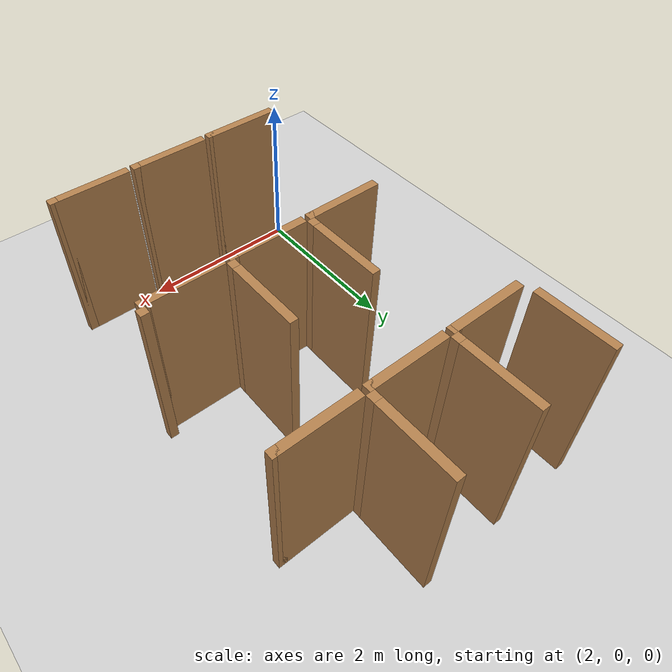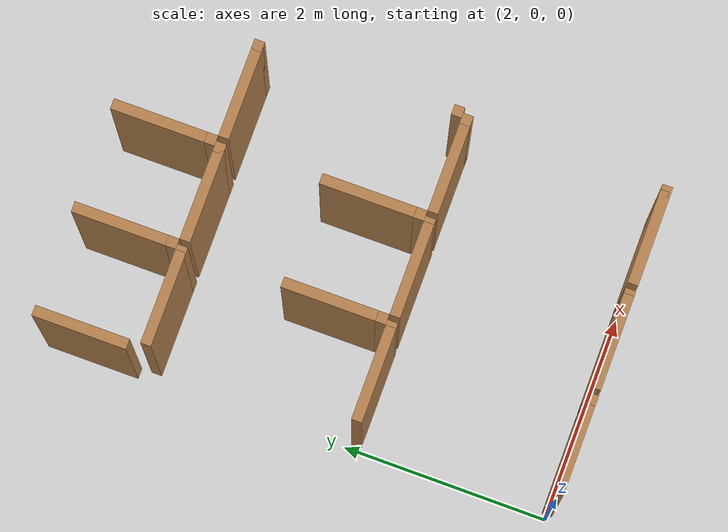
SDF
<sdf version="1.6">
 <world name="default">
  <include><uri>model://sun</uri></include>
  <model name="ground_plane">
   <static>true</static>
   <link name="link">
    <collision name="collision"><geometry><plane><size>12.0 12.0</size></plane></geometry></collision>
    <visual name="visual">
     <cast_shadows>false</cast_shadows>
     <geometry><plane><size>12.0 12.0</size></plane></geometry>
     <material>
      <script><uri>file://media/materials/scripts/gazebo.material</uri><name>Gazebo/Grey</name></script>
     </material>
    </visual>
   </link>
   <pose>6.0 6.0 0 0 0 0</pose>
  </model>
  <model name="vwall_2_3">
   <pose>3.0 2.5 1.0 0 0 0</pose>
   <link name="link">
    <collision name="collision"><geometry><box><size>0.1 0.9 2</size></box></geometry></collision>
    <visual name="visual">
     <geometry><box><size>0.1 0.9 2</size></box></geometry>
     <material>
      <script><uri>file://media/materials/scripts/gazebo.material</uri><name>Gazebo/Wood</name></script>
     </material>
    </visual>
   </link>
  </model>
  <model name="joint_3.0_-2.0">
   <pose>3.0 2.0 1.0 0 0 0</pose>
   <link name="link">
    <collision name="collision"><geometry><box><size>0.1 0.1 2</size></box></geometry></collision>
    <visual name="visual">
     <geometry><box><size>0.1 0.1 2</size></box></geometry>
     <material>
      <script><uri>file://media/materials/scripts/gazebo.material</uri><name>Gazebo/Wood</name></script>
     </material>
    </visual>
   </link>
  </model>
  <model name="vwall_2_4">
   <pose>4.0 2.5 1.0 0 0 0</pose>
   <link name="link">
    <collision name="collision"><geometry><box><size>0.1 0.9 2</size></box></geometry></collision>
    <visual name="visual">
     <geometry><box><size>0.1 0.9 2</size></box></geometry>
     <material>
      <script><uri>file://media/materials/scripts/gazebo.material</uri><name>Gazebo/Wood</name></script>
     </material>
    </visual>
   </link>
  </model>
  <model name="joint_4.0_-2.0">
   <pose>4.0 2.0 1.0 0 0 0</pose>
   <link name="link">
    <collision name="collision"><geometry><box><size>0.1 0.1 2</size></box></geometry></collision>
    <visual name="visual">
     <geometry><box><size>0.1 0.1 2</size></box></geometry>
     <material>
      <script><uri>file://media/materials/scripts/gazebo.material</uri><name>Gazebo/Wood</name></script>
     </material>
    </visual>
   </link>
  </model>
  <model name="joint_5.0_-2.0">
   <pose>5.0 2.0 1.0 0 0 0</pose>
   <link name="link">
    <collision name="collision"><geometry><box><size>0.1 0.1 2</size></box></geometry></collision>
    <visual name="visual">
     <geometry><box><size>0.1 0.1 2</size></box></geometry>
     <material>
      <script><uri>file://media/materials/scripts/gazebo.material</uri><name>Gazebo/Wood</name></script>
     </material>
    </visual>
   </link>
  </model>
  <model name="vwall_4_2">
   <pose>2.0 4.5 1.0 0 0 0</pose>
   <link name="link">
    <collision name="collision"><geometry><box><size>0.1 0.9 2</size></box></geometry></collision>
    <visual name="visual">
     <geometry><box><size>0.1 0.9 2</size></box></geometry>
     <material>
      <script><uri>file://media/materials/scripts/gazebo.material</uri><name>Gazebo/Wood</name></script>
     </material>
    </visual>
   </link>
  </model>
  <model name="vwall_4_3">
   <pose>3.0 4.5 1.0 0 0 0</pose>
   <link name="link">
    <collision name="collision"><geometry><box><size>0.1 0.9 2</size></box></geometry></collision>
    <visual name="visual">
     <geometry><box><size>0.1 0.9 2</size></box></geometry>
     <material>
      <script><uri>file://media/materials/scripts/gazebo.material</uri><name>Gazebo/Wood</name></script>
     </material>
    </visual>
   </link>
  </model>
  <model name="joint_3.0_-4.0">
   <pose>3.0 4.0 1.0 0 0 0</pose>
   <link name="link">
    <collision name="collision"><geometry><box><size>0.1 0.1 2</size></box></geometry></collision>
    <visual name="visual">
     <geometry><box><size>0.1 0.1 2</size></box></geometry>
     <material>
      <script><uri>file://media/materials/scripts/gazebo.material</uri><name>Gazebo/Wood</name></script>
     </material>
    </visual>
   </link>
  </model>
  <model name="vwall_4_4">
   <pose>4.0 4.5 1.0 0 0 0</pose>
   <link name="link">
    <collision name="collision"><geometry><box><size>0.1 0.9 2</size></box></geometry></collision>
    <visual name="visual">
     <geometry><box><size>0.1 0.9 2</size></box></geometry>
     <material>
      <script><uri>file://media/materials/scripts/gazebo.material</uri><name>Gazebo/Wood</name></script>
     </material>
    </visual>
   </link>
  </model>
  <model name="joint_4.0_-4.0">
   <pose>4.0 4.0 1.0 0 0 0</pose>
   <link name="link">
    <collision name="collision"><geometry><box><size>0.1 0.1 2</size></box></geometry></collision>
    <visual name="visual">
     <geometry><box><size>0.1 0.1 2</size></box></geometry>
     <material>
      <script><uri>file://media/materials/scripts/gazebo.material</uri><name>Gazebo/Wood</name></script>
     </material>
    </visual>
   </link>
  </model>
  <model name="hwall_0_2">
   <pose>2.5 0.0 1.0 0 0 0</pose>
   <link name="link">
    <collision name="collision"><geometry><box><size>0.9 0.1 2</size></box></geometry></collision>
    <visual name="visual">
     <geometry><box><size>0.9 0.1 2</size></box></geometry>
     <material>
      <script><uri>file://media/materials/scripts/gazebo.material</uri><name>Gazebo/Wood</name></script>
     </material>
    </visual>
   </link>
  </model>
  <model name="joint_2.95_0.0">
   <pose>2.95 0.0 1.0 0 0 0</pose>
   <link name="link">
    <collision name="collision"><geometry><box><size>0.1 0.1 2</size></box></geometry></collision>
    <visual name="visual">
     <geometry><box><size>0.1 0.1 2</size></box></geometry>
     <material>
      <script><uri>file://media/materials/scripts/gazebo.material</uri><name>Gazebo/Wood</name></script>
     </material>
    </visual>
   </link>
  </model>
  <model name="hwall_0_3">
   <pose>3.5 0.0 1.0 0 0 0</pose>
   <link name="link">
    <collision name="collision"><geometry><box><size>0.9 0.1 2</size></box></geometry></collision>
    <visual name="visual">
     <geometry><box><size>0.9 0.1 2</size></box></geometry>
     <material>
      <script><uri>file://media/materials/scripts/gazebo.material</uri><name>Gazebo/Wood</name></script>
     </material>
    </visual>
   </link>
  </model>
  <model name="joint_3.95_0.0">
   <pose>3.95 0.0 1.0 0 0 0</pose>
   <link name="link">
    <collision name="collision"><geometry><box><size>0.1 0.1 2</size></box></geometry></collision>
    <visual name="visual">
     <geometry><box><size>0.1 0.1 2</size></box></geometry>
     <material>
      <script><uri>file://media/materials/scripts/gazebo.material</uri><name>Gazebo/Wood</name></script>
     </material>
    </visual>
   </link>
  </model>
  <model name="hwall_0_4">
   <pose>4.5 0.0 1.0 0 0 0</pose>
   <link name="link">
    <collision name="collision"><geometry><box><size>0.9 0.1 2</size></box></geometry></collision>
    <visual name="visual">
     <geometry><box><size>0.9 0.1 2</size></box></geometry>
     <material>
      <script><uri>file://media/materials/scripts/gazebo.material</uri><name>Gazebo/Wood</name></script>
     </material>
    </visual>
   </link>
  </model>
  <model name="joint_4.95_0.0">
   <pose>4.95 0.0 1.0 0 0 0</pose>
   <link name="link">
    <collision name="collision"><geometry><box><size>0.1 0.1 2</size></box></geometry></collision>
    <visual name="visual">
     <geometry><box><size>0.1 0.1 2</size></box></geometry>
     <material>
      <script><uri>file://media/materials/scripts/gazebo.material</uri><name>Gazebo/Wood</name></script>
     </material>
    </visual>
   </link>
  </model>
  <model name="hwall_1_2">
   <pose>2.5 1.9 1.0 0 0 0</pose>
   <link name="link">
    <collision name="collision"><geometry><box><size>0.9 0.1 2</size></box></geometry></collision>
    <visual name="visual">
     <geometry><box><size>0.9 0.1 2</size></box></geometry>
     <material>
      <script><uri>file://media/materials/scripts/gazebo.material</uri><name>Gazebo/Wood</name></script>
     </material>
    </visual>
   </link>
  </model>
  <model name="joint_2.95_-1.9">
   <pose>2.95 1.9 1.0 0 0 0</pose>
   <link name="link">
    <collision name="collision"><geometry><box><size>0.1 0.1 2</size></box></geometry></collision>
    <visual name="visual">
     <geometry><box><size>0.1 0.1 2</size></box></geometry>
     <material>
      <script><uri>file://media/materials/scripts/gazebo.material</uri><name>Gazebo/Wood</name></script>
     </material>
    </visual>
   </link>
  </model>
  <model name="hwall_1_3">
   <pose>3.5 1.9 1.0 0 0 0</pose>
   <link name="link">
    <collision name="collision"><geometry><box><size>0.9 0.1 2</size></box></geometry></collision>
    <visual name="visual">
     <geometry><box><size>0.9 0.1 2</size></box></geometry>
     <material>
      <script><uri>file://media/materials/scripts/gazebo.material</uri><name>Gazebo/Wood</name></script>
     </material>
    </visual>
   </link>
  </model>
  <model name="joint_3.95_-1.9">
   <pose>3.95 1.9 1.0 0 0 0</pose>
   <link name="link">
    <collision name="collision"><geometry><box><size>0.1 0.1 2</size></box></geometry></collision>
    <visual name="visual">
     <geometry><box><size>0.1 0.1 2</size></box></geometry>
     <material>
      <script><uri>file://media/materials/scripts/gazebo.material</uri><name>Gazebo/Wood</name></script>
     </material>
    </visual>
   </link>
  </model>
  <model name="hwall_1_4">
   <pose>4.5 1.9 1.0 0 0 0</pose>
   <link name="link">
    <collision name="collision"><geometry><box><size>0.9 0.1 2</size></box></geometry></collision>
    <visual name="visual">
     <geometry><box><size>0.9 0.1 2</size></box></geometry>
     <material>
      <script><uri>file://media/materials/scripts/gazebo.material</uri><name>Gazebo/Wood</name></script>
     </material>
    </visual>
   </link>
  </model>
  <model name="joint_4.95_-1.9">
   <pose>4.95 1.9 1.0 0 0 0</pose>
   <link name="link">
    <collision name="collision"><geometry><box><size>0.1 0.1 2</size></box></geometry></collision>
    <visual name="visual">
     <geometry><box><size>0.1 0.1 2</size></box></geometry>
     <material>
      <script><uri>file://media/materials/scripts/gazebo.material</uri><name>Gazebo/Wood</name></script>
     </material>
    </visual>
   </link>
  </model>
  <model name="hwall_3_2">
   <pose>2.5 3.9 1.0 0 0 0</pose>
   <link name="link">
    <collision name="collision"><geometry><box><size>0.9 0.1 2</size></box></geometry></collision>
    <visual name="visual">
     <geometry><box><size>0.9 0.1 2</size></box></geometry>
     <material>
      <script><uri>file://media/materials/scripts/gazebo.material</uri><name>Gazebo/Wood</name></script>
     </material>
    </visual>
   </link>
  </model>
  <model name="joint_2.95_-3.9">
   <pose>2.95 3.9 1.0 0 0 0</pose>
   <link name="link">
    <collision name="collision"><geometry><box><size>0.1 0.1 2</size></box></geometry></collision>
    <visual name="visual">
     <geometry><box><size>0.1 0.1 2</size></box></geometry>
     <material>
      <script><uri>file://media/materials/scripts/gazebo.material</uri><name>Gazebo/Wood</name></script>
     </material>
    </visual>
   </link>
  </model>
  <model name="hwall_3_3">
   <pose>3.5 3.9 1.0 0 0 0</pose>
   <link name="link">
    <collision name="collision"><geometry><box><size>0.9 0.1 2</size></box></geometry></collision>
    <visual name="visual">
     <geometry><box><size>0.9 0.1 2</size></box></geometry>
     <material>
      <script><uri>file://media/materials/scripts/gazebo.material</uri><name>Gazebo/Wood</name></script>
     </material>
    </visual>
   </link>
  </model>
  <model name="joint_3.95_-3.9">
   <pose>3.95 3.9 1.0 0 0 0</pose>
   <link name="link">
    <collision name="collision"><geometry><box><size>0.1 0.1 2</size></box></geometry></collision>
    <visual name="visual">
     <geometry><box><size>0.1 0.1 2</size></box></geometry>
     <material>
      <script><uri>file://media/materials/scripts/gazebo.material</uri><name>Gazebo/Wood</name></script>
     </material>
    </visual>
   </link>
  </model>
  <model name="hwall_3_4">
   <pose>4.5 3.9 1.0 0 0 0</pose>
   <link name="link">
    <collision name="collision"><geometry><box><size>0.9 0.1 2</size></box></geometry></collision>
    <visual name="visual">
     <geometry><box><size>0.9 0.1 2</size></box></geometry>
     <material>
      <script><uri>file://media/materials/scripts/gazebo.material</uri><name>Gazebo/Wood</name></script>
     </material>
    </visual>
   </link>
  </model>
  <model name="joint_4.95_-3.9">
   <pose>4.95 3.9 1.0 0 0 0</pose>
   <link name="link">
    <collision name="collision"><geometry><box><size>0.1 0.1 2</size></box></geometry></collision>
    <visual name="visual">
     <geometry><box><size>0.1 0.1 2</size></box></geometry>
     <material>
      <script><uri>file://media/materials/scripts/gazebo.material</uri><name>Gazebo/Wood</name></script>
     </material>
    </visual>
   </link>
  </model>
 </world>
</sdf>
